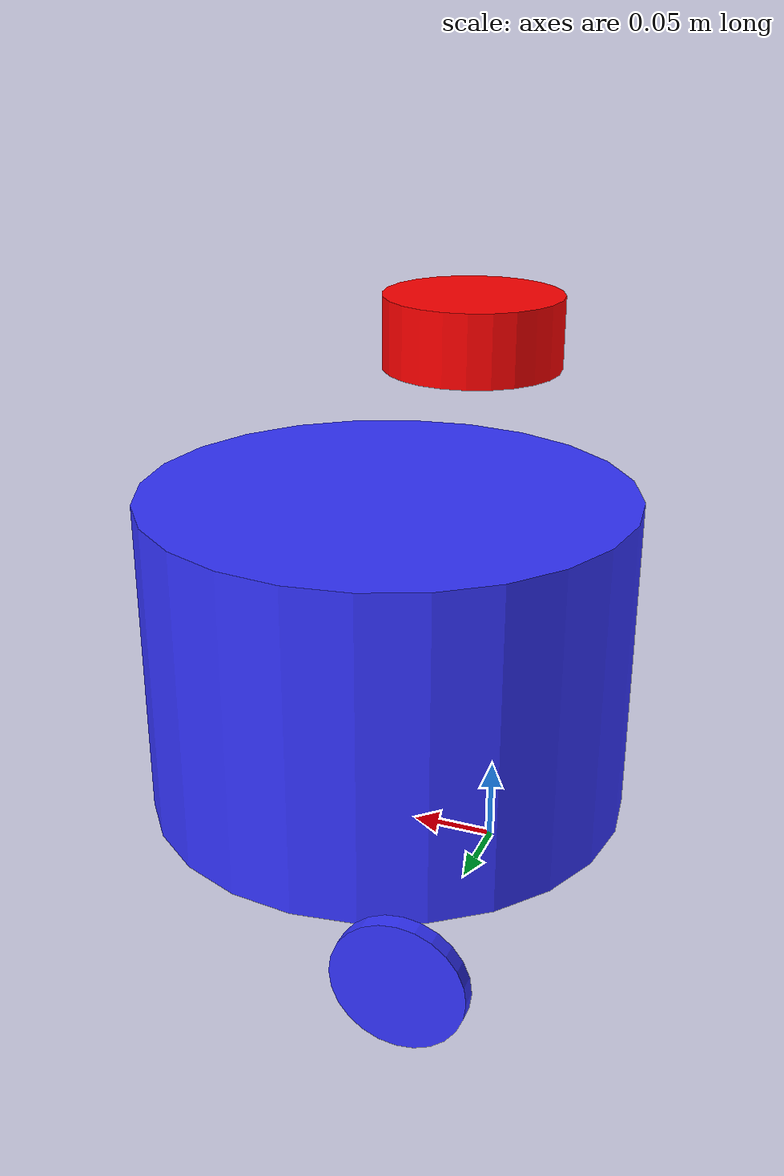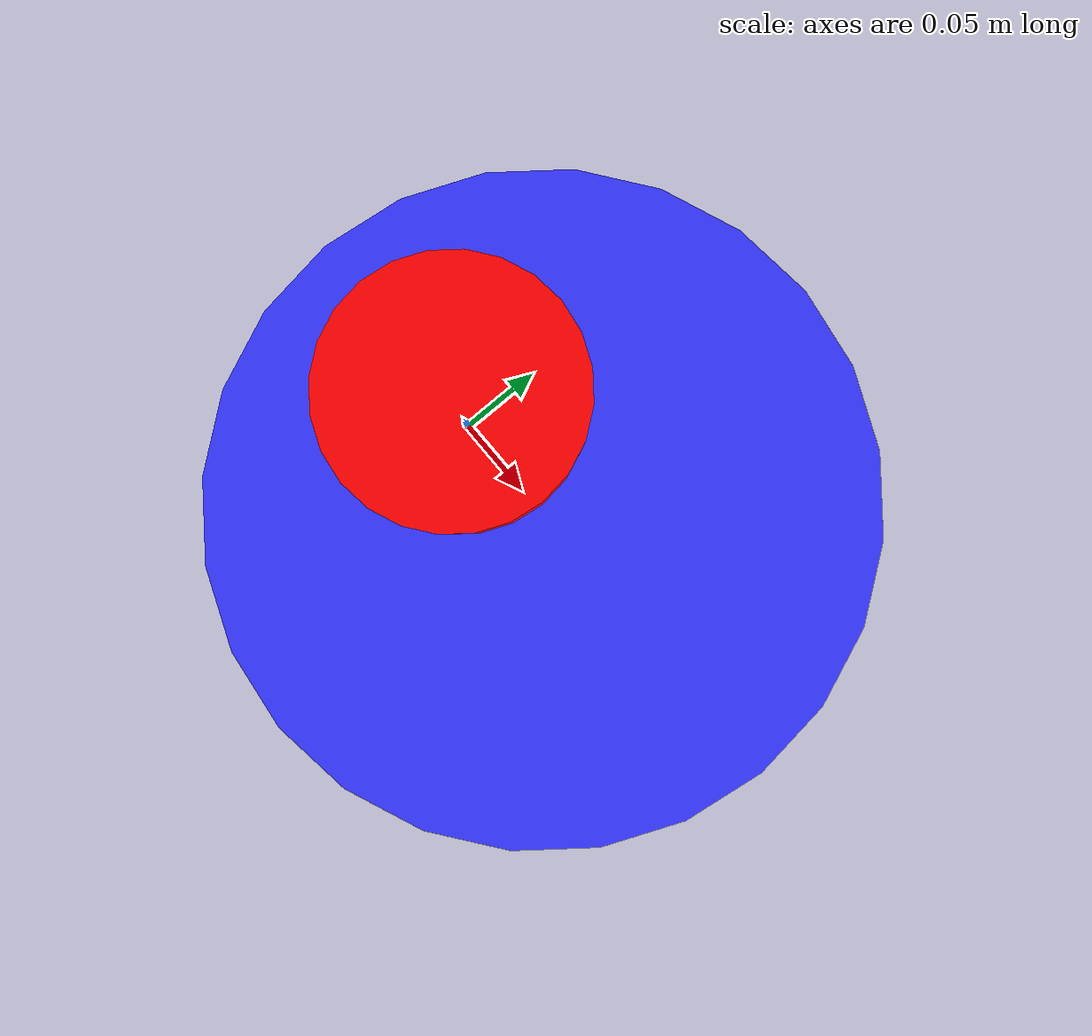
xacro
<?xml version="1.0"?>
<robot xmlns:xacro="http://www.ros.org/wiki/xacro"  name="robot">

    <xacro:arg name="use_ros2_control" default="true"/>
    <xacro:arg name="sim_mode" default="false"/>

    <xacro:include filename="robot_core.xacro" />
    <xacro:include filename="ros2_control.xacro" />
    <xacro:include filename="lidar.xacro"/>
</robot>

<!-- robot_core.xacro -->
<robot xmlns:xacro="http://www.ros.org/wiki/xacro" >

    <xacro:include filename="inertial_macros.xacro"/>

    <material name="white">
        <color rgba="1 1 1 1" />
    </material>

    <material name="orange">
        <color rgba="1 0.3 0.1 1"/>
    </material>

    <material name="blue">
        <color rgba="0.2 0.2 1 1"/>
    </material>

    <material name="black">
        <color rgba="0 0 0 1"/>
    </material>

    <material name="red">
        <color rgba="1 0 0 1"/>
    </material>

    <!-- BASE LINK -->

    <link name="base_link">

    </link>

    <!-- BASE_FOOTPRINT LINK -->

    <joint name="base_footprint_joint" type="fixed">
        <parent link="base_link"/>
        <child link="base_footprint"/>
        <origin xyz="0 0 0" rpy="0 0 0"/>
    </joint>

    <link name="base_footprint">
    </link>

    <!-- CHASSIS LINK -->

    <joint name="chassis_joint" type="fixed">
    <parent link="base_link"/>
    <child link="chassis"/>
    <origin xyz="-0.08 0 0.02" rpy="0 0 0" />
    <axis xyz="0 0 1"/>
    </joint>

    <link name="chassis">
        <visual>
            <origin xyz="0.15 0.0 0.1"/>
            <geometry>
                <cylinder radius="0.15" length="0.2"/>
            </geometry>
            <material name="blue"/>
        </visual>
        <collision>
            <origin xyz="0.15 0.0 0.1"/>
            <geometry>
                <cylinder radius="0.15" length="0.2"/>
            </geometry>
        </collision>
        <xacro:inertial_cylinder mass="0.1" length="0.2" radius="0.15">
            <origin xyz="0 0 0" rpy="0 0 0"/>
        </xacro:inertial_cylinder>
    </link>

    <gazebo reference = "chassis">
        <material>Gazebo/Red</material>
    </gazebo>

    <!-- LEFT WHEEL LINK -->

    <joint name="left_wheel_joint" type="continuous">
        <parent link="base_link"/>
        <child link="left_wheel"/>
        <origin xyz="0 0.16 0" rpy="-${pi/2} 0 0" />
        <axis xyz="0 0 1"/>
    </joint>

    <link name="left_wheel">
        <visual>
            <geometry>
                <cylinder radius="0.04" length="0.01"/>
            </geometry>
            <material name="blue"/>
        </visual>
        <collision>
            <geometry>
                <cylinder radius="0.04" length="0.01"/>
            </geometry>
        </collision>
        <xacro:inertial_cylinder mass="0.1" length="0.01" radius="0.04">
            <origin xyz="0 0 0" rpy="0 0 0"/>
        </xacro:inertial_cylinder>
    </link>
    <gazebo reference = "left_wheel">
        <material>Gazebo/Blue</material>
    </gazebo>

    <!-- RIGHT WHEEL LINK -->

    <joint name="right_wheel_joint" type="continuous">
        <parent link="base_link"/>
        <child link="right_wheel"/>
        <origin xyz="0 -0.16 0" rpy="${pi/2} 0 0" />
        <axis xyz="0 0 -1"/>
    </joint>

    <link name="right_wheel">
        <visual>
            <geometry>
                <cylinder radius="0.04" length="0.01"/>
            </geometry>
            <material name="blue"/>
        </visual>
        <collision>
            <geometry>
                <cylinder radius="0.04" length="0.01"/>
            </geometry>
        </collision>
        <xacro:inertial_cylinder mass="0.1" length="0.01" radius="0.04">
            <origin xyz="0 0 0" rpy="0 0 0"/>
        </xacro:inertial_cylinder>
    </link>

    <gazebo reference = "right_wheel">
        <material>Gazebo/Blue</material>
    </gazebo>

    <!-- CASTER WHEEL LINK -->

    <joint name="caster_wheel_joint" type="fixed">
        <parent link="base_link"/>
        <child link="caster_wheel"/>
        <origin xyz="0.18 0 0"/>
    </joint>

    <link name="caster_wheel">
        <visual>
            <geometry>
                <sphere radius="0.04"/>
            </geometry>
            <material name="black"/>
        </visual>
        <collision>
            <geometry>
                <sphere radius="0.04"/>
            </geometry>
        </collision>
        <xacro:inertial_sphere mass="0.1" radius="0.04">
            <origin xyz="0 0 0" rpy="0 0 0"/>
        </xacro:inertial_sphere>
    </link>

    <gazebo reference = "caster_wheel">
        <material>Gazebo/Black</material>
        <mu1 value="0.001"></mu1>
        <mu2 value="0.001"></mu2>
    </gazebo>

</robot>

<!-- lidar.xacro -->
<robot xmlns:xacro="http://www.ros.org/wiki/xacro" >

    <joint name="laser_joint" type="fixed">
        <parent link="chassis"/>
        <child link="laser_frame"/>
        <origin xyz="0.1 0 0.3" rpy="0 0 0"/>
    </joint>

    <link name="laser_frame">
        <visual>
            <geometry>
                <cylinder radius="0.05" length="0.04"/>
            </geometry>
            <material name="red"/>
        </visual>
        <collision>
            <geometry>
                <cylinder radius="0.05" length="0.04"/>
            </geometry>
        </collision>
        <xacro:inertial_cylinder mass="0.1" length="0.04" radius="0.05">
            <origin xyz="0 0 0" rpy="0 0 0"/>
        </xacro:inertial_cylinder>
    </link>

</robot>
